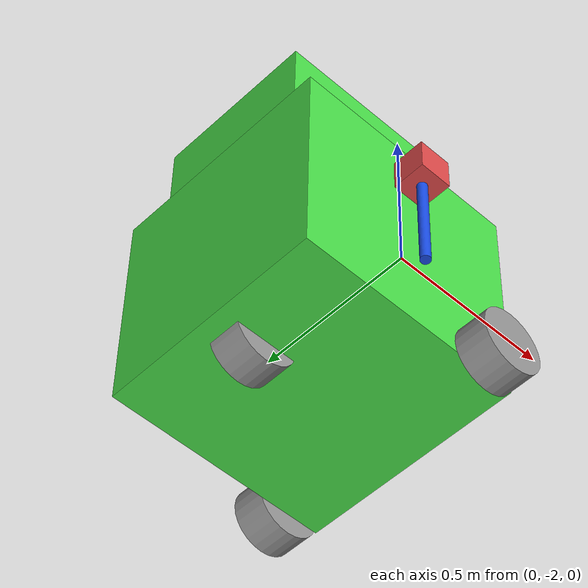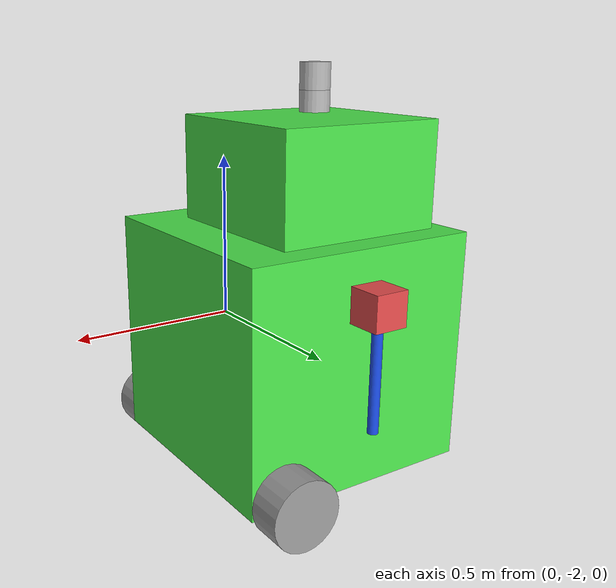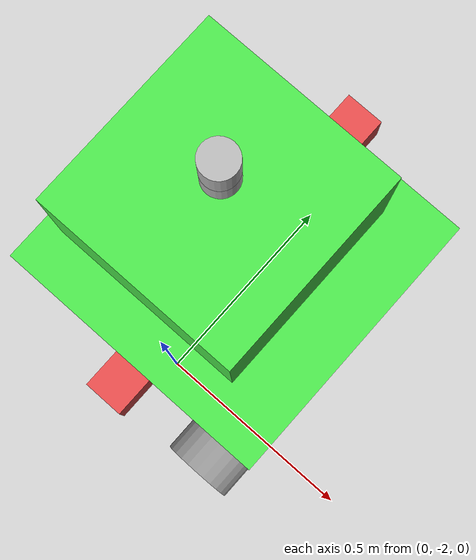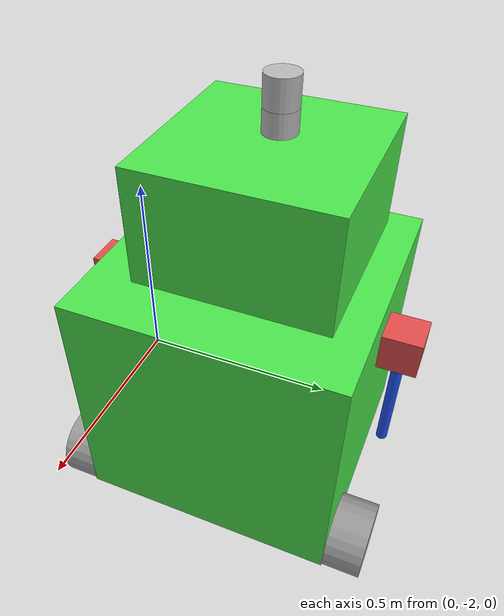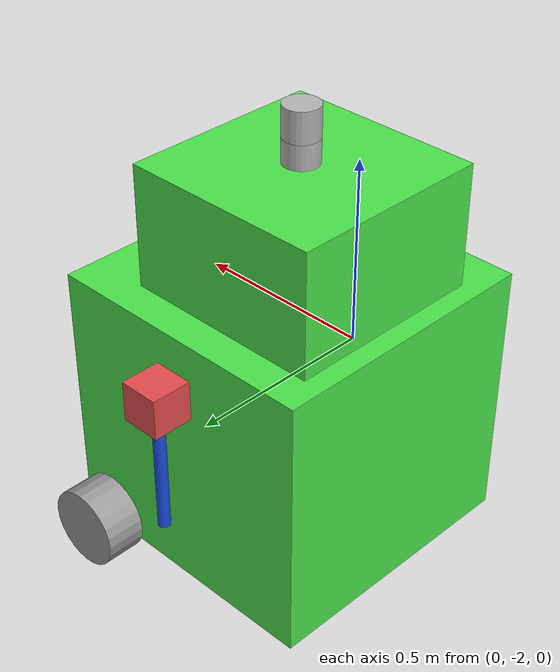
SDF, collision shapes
<?xml version='1.0'?>
<sdf version='1.6'>
  <model name='HumanoidRobot'>
    <model name='Humanoid1'>
      <link name='link'>
        <pose frame=''>-0.097745 -1.70879 0.485 0 -0 0</pose>
        <inertial>
          <mass>1</mass>
          <inertia>
            <ixx>0.166667</ixx>
            <ixy>0</ixy>
            <ixz>0</ixz>
            <iyy>0.166667</iyy>
            <iyz>0</iyz>
            <izz>0.166667</izz>
          </inertia>
          <pose frame=''>0 0 0 0 -0 0</pose>
        </inertial>
        <self_collide>0</self_collide>
        <kinematic>0</kinematic>
        <visual name='visual'>
          <geometry>
            <box>
              <size>0.5 0.5 0.3</size>
            </box>
          </geometry>
          <material>
            <script>
              <name>Gazebo/Grey</name>
              <uri>file://media/materials/scripts/gazebo.material</uri>
            </script>
            <shader type='pixel'>
              <normal_map>__default__</normal_map>
            </shader>
            <ambient>0.3 0.9 0.3 1</ambient>
            <diffuse>0.7 0.7 0.7 1</diffuse>
            <specular>0.01 0.01 0.01 1</specular>
            <emissive>0 0 0 1</emissive>
          </material>
          <pose frame=''>0 0 0 0 -0 0</pose>
          <transparency>0</transparency>
          <cast_shadows>1</cast_shadows>
        </visual>
        <collision name='collision'>
          <laser_retro>0</laser_retro>
          <max_contacts>10</max_contacts>
          <pose frame=''>0 0 0 0 -0 0</pose>
          <geometry>
            <box>
              <size>0.5 0.5 0.3</size>
            </box>
          </geometry>
          <surface>
            <friction>
              <ode>
                <mu>1</mu>
                <mu2>1</mu2>
                <fdir1>0 0 0</fdir1>
                <slip1>0</slip1>
                <slip2>0</slip2>
              </ode>
              <torsional>
                <coefficient>1</coefficient>
                <patch_radius>0</patch_radius>
                <surface_radius>0</surface_radius>
                <use_patch_radius>1</use_patch_radius>
                <ode>
                  <slip>0</slip>
                </ode>
              </torsional>
            </friction>
            <bounce>
              <restitution_coefficient>0</restitution_coefficient>
              <threshold>1e+06</threshold>
            </bounce>
            <contact>
              <collide_without_contact>0</collide_without_contact>
              <collide_without_contact_bitmask>1</collide_without_contact_bitmask>
              <collide_bitmask>1</collide_bitmask>
              <ode>
                <soft_cfm>0</soft_cfm>
                <soft_erp>0.2</soft_erp>
                <kp>1e+13</kp>
                <kd>1</kd>
                <max_vel>0.01</max_vel>
                <min_depth>0</min_depth>
              </ode>
              <bullet>
                <split_impulse>1</split_impulse>
                <split_impulse_penetration_threshold>-0.01</split_impulse_penetration_threshold>
                <soft_cfm>0</soft_cfm>
                <soft_erp>0.2</soft_erp>
                <kp>1e+13</kp>
                <kd>1</kd>
              </bullet>
            </contact>
          </surface>
        </collision>
      </link>
      <link name='link_0'>
        <pose frame=''>-0.047736 -1.72366 0 0 -0 0</pose>
        <inertial>
          <mass>1</mass>
          <inertia>
            <ixx>0.166667</ixx>
            <ixy>0</ixy>
            <ixz>0</ixz>
            <iyy>0.166667</iyy>
            <iyz>0</iyz>
            <izz>0.166667</izz>
          </inertia>
          <pose frame=''>0 0 0 0 -0 0</pose>
        </inertial>
        <self_collide>0</self_collide>
        <kinematic>0</kinematic>
        <visual name='visual'>
          <pose frame=''>0 0 0 0 -0 0</pose>
          <geometry>
            <box>
              <size>0.7 0.7 0.67</size>
            </box>
          </geometry>
          <material>
            <lighting>1</lighting>
            <script>
              <uri>file://media/materials/scripts/gazebo.material</uri>
              <name>Gazebo/Grey</name>
            </script>
            <shader type='pixel'>
              <normal_map>__default__</normal_map>
            </shader>
            <ambient>0.3 0.9 0.3 1</ambient>
            <diffuse>0.7 0.7 0.7 1</diffuse>
            <specular>0.01 0.01 0.01 1</specular>
            <emissive>0 0 0 1</emissive>
          </material>
          <transparency>0</transparency>
          <cast_shadows>1</cast_shadows>
        </visual>
        <collision name='collision'>
          <laser_retro>0</laser_retro>
          <max_contacts>10</max_contacts>
          <pose frame=''>0 0 0 0 -0 0</pose>
          <geometry>
            <box>
              <size>0.7 0.7 0.67</size>
            </box>
          </geometry>
          <surface>
            <friction>
              <ode>
                <mu>1</mu>
                <mu2>1</mu2>
                <fdir1>0 0 0</fdir1>
                <slip1>0</slip1>
                <slip2>0</slip2>
              </ode>
              <torsional>
                <coefficient>1</coefficient>
                <patch_radius>0</patch_radius>
                <surface_radius>0</surface_radius>
                <use_patch_radius>1</use_patch_radius>
                <ode>
                  <slip>0</slip>
                </ode>
              </torsional>
            </friction>
            <bounce>
              <restitution_coefficient>0</restitution_coefficient>
              <threshold>1e+06</threshold>
            </bounce>
            <contact>
              <collide_without_contact>0</collide_without_contact>
              <collide_without_contact_bitmask>1</collide_without_contact_bitmask>
              <collide_bitmask>1</collide_bitmask>
              <ode>
                <soft_cfm>0</soft_cfm>
                <soft_erp>0.2</soft_erp>
                <kp>1e+13</kp>
                <kd>1</kd>
                <max_vel>0.01</max_vel>
                <min_depth>0</min_depth>
              </ode>
              <bullet>
                <split_impulse>1</split_impulse>
                <split_impulse_penetration_threshold>-0.01</split_impulse_penetration_threshold>
                <soft_cfm>0</soft_cfm>
                <soft_erp>0.2</soft_erp>
                <kp>1e+13</kp>
                <kd>1</kd>
              </bullet>
            </contact>
          </surface>
        </collision>
      </link>
      <link name='link_1_clone_clone'>
        <pose frame=''>0.202264 -1.32366 -0.3 1.5708 -0 0</pose>
        <inertial>
          <mass>1</mass>
          <inertia>
            <ixx>0.145833</ixx>
            <ixy>0</ixy>
            <ixz>0</ixz>
            <iyy>0.145833</iyy>
            <iyz>0</iyz>
            <izz>0.125</izz>
          </inertia>
          <pose frame=''>0 0 0 0 -0 0</pose>
        </inertial>
        <self_collide>0</self_collide>
        <kinematic>0</kinematic>
        <visual name='visual'>
          <pose frame=''>0 0 0 0 -0 0</pose>
          <geometry>
            <cylinder>
              <radius>0.1</radius>
              <length>0.1</length>
            </cylinder>
          </geometry>
          <material>
            <lighting>1</lighting>
            <script>
              <uri>file://media/materials/scripts/gazebo.material</uri>
              <name>Gazebo/Grey</name>
            </script>
            <shader type='pixel'>
              <normal_map>__default__</normal_map>
            </shader>
            <ambient>0.9 0.9 0.9 1</ambient>
            <diffuse>0.7 0.7 0.7 1</diffuse>
            <specular>0.01 0.01 0.01 1</specular>
            <emissive>0 0 0 1</emissive>
          </material>
          <transparency>0</transparency>
          <cast_shadows>1</cast_shadows>
        </visual>
        <collision name='collision'>
          <laser_retro>0</laser_retro>
          <max_contacts>10</max_contacts>
          <pose frame=''>0 0 0 0 -0 0</pose>
          <geometry>
            <cylinder>
              <radius>0.1</radius>
              <length>0.1</length>
            </cylinder>
          </geometry>
          <surface>
            <friction>
              <ode>
                <mu>1</mu>
                <mu2>1</mu2>
                <fdir1>0 0 0</fdir1>
                <slip1>0</slip1>
                <slip2>0</slip2>
              </ode>
              <torsional>
                <coefficient>1</coefficient>
                <patch_radius>0</patch_radius>
                <surface_radius>0</surface_radius>
                <use_patch_radius>1</use_patch_radius>
                <ode>
                  <slip>0</slip>
                </ode>
              </torsional>
            </friction>
            <bounce>
              <restitution_coefficient>0</restitution_coefficient>
              <threshold>1e+06</threshold>
            </bounce>
            <contact>
              <collide_without_contact>0</collide_without_contact>
              <collide_without_contact_bitmask>1</collide_without_contact_bitmask>
              <collide_bitmask>1</collide_bitmask>
              <ode>
                <soft_cfm>0</soft_cfm>
                <soft_erp>0.2</soft_erp>
                <kp>1e+13</kp>
                <kd>1</kd>
                <max_vel>0.01</max_vel>
                <min_depth>0</min_depth>
              </ode>
              <bullet>
                <split_impulse>1</split_impulse>
                <split_impulse_penetration_threshold>-0.01</split_impulse_penetration_threshold>
                <soft_cfm>0</soft_cfm>
                <soft_erp>0.2</soft_erp>
                <kp>1e+13</kp>
                <kd>1</kd>
              </bullet>
            </contact>
          </surface>
        </collision>
      </link>
      <link name='link_1_clone_clone_0'>
        <pose frame=''>0.202264 -2.12366 -0.3 1.5708 -0 0</pose>
        <inertial>
          <mass>1</mass>
          <inertia>
            <ixx>0.145833</ixx>
            <ixy>0</ixy>
            <ixz>0</ixz>
            <iyy>0.145833</iyy>
            <iyz>0</iyz>
            <izz>0.125</izz>
          </inertia>
          <pose frame=''>0 0 0 0 -0 0</pose>
        </inertial>
        <self_collide>0</self_collide>
        <kinematic>0</kinematic>
        <visual name='visual'>
          <pose frame=''>0 0 0 0 -0 0</pose>
          <geometry>
            <cylinder>
              <radius>0.1</radius>
              <length>0.1</length>
            </cylinder>
          </geometry>
          <material>
            <lighting>1</lighting>
            <script>
              <uri>file://media/materials/scripts/gazebo.material</uri>
              <name>Gazebo/Grey</name>
            </script>
            <shader type='pixel'>
              <normal_map>__default__</normal_map>
            </shader>
            <ambient>0.9 0.9 0.9 1</ambient>
            <diffuse>0.7 0.7 0.7 1</diffuse>
            <specular>0.01 0.01 0.01 1</specular>
            <emissive>0 0 0 1</emissive>
          </material>
          <transparency>0</transparency>
          <cast_shadows>1</cast_shadows>
        </visual>
        <collision name='collision'>
          <laser_retro>0</laser_retro>
          <max_contacts>10</max_contacts>
          <pose frame=''>0 0 0 0 -0 0</pose>
          <geometry>
            <cylinder>
              <radius>0.1</radius>
              <length>0.1</length>
            </cylinder>
          </geometry>
          <surface>
            <friction>
              <ode>
                <mu>1</mu>
                <mu2>1</mu2>
                <fdir1>0 0 0</fdir1>
                <slip1>0</slip1>
                <slip2>0</slip2>
              </ode>
              <torsional>
                <coefficient>1</coefficient>
                <patch_radius>0</patch_radius>
                <surface_radius>0</surface_radius>
                <use_patch_radius>1</use_patch_radius>
                <ode>
                  <slip>0</slip>
                </ode>
              </torsional>
            </friction>
            <bounce>
              <restitution_coefficient>0</restitution_coefficient>
              <threshold>1e+06</threshold>
            </bounce>
            <contact>
              <collide_without_contact>0</collide_without_contact>
              <collide_without_contact_bitmask>1</collide_without_contact_bitmask>
              <collide_bitmask>1</collide_bitmask>
              <ode>
                <soft_cfm>0</soft_cfm>
                <soft_erp>0.2</soft_erp>
                <kp>1e+13</kp>
                <kd>1</kd>
                <max_vel>0.01</max_vel>
                <min_depth>0</min_depth>
              </ode>
              <bullet>
                <split_impulse>1</split_impulse>
                <split_impulse_penetration_threshold>-0.01</split_impulse_penetration_threshold>
                <soft_cfm>0</soft_cfm>
                <soft_erp>0.2</soft_erp>
                <kp>1e+13</kp>
                <kd>1</kd>
              </bullet>
            </contact>
          </surface>
        </collision>
      </link>
      <link name='link_1_clone_clone_0_clone'>
        <pose frame=''>-0.247736 -1.72366 -0.3 1.5708 -0 0</pose>
        <inertial>
          <mass>1</mass>
          <inertia>
            <ixx>0.145833</ixx>
            <ixy>0</ixy>
            <ixz>0</ixz>
            <iyy>0.145833</iyy>
            <iyz>0</iyz>
            <izz>0.125</izz>
          </inertia>
          <pose frame=''>0 0 0 0 -0 0</pose>
        </inertial>
        <self_collide>0</self_collide>
        <kinematic>0</kinematic>
        <visual name='visual'>
          <pose frame=''>0 0 0 0 -0 0</pose>
          <geometry>
            <cylinder>
              <radius>0.1</radius>
              <length>0.1</length>
            </cylinder>
          </geometry>
          <material>
            <lighting>1</lighting>
            <script>
              <uri>file://media/materials/scripts/gazebo.material</uri>
              <name>Gazebo/Grey</name>
            </script>
            <shader type='pixel'>
              <normal_map>__default__</normal_map>
            </shader>
            <ambient>0.3 0.3 0.3 1</ambient>
            <diffuse>0.7 0.7 0.7 1</diffuse>
            <specular>0.01 0.01 0.01 1</specular>
            <emissive>0 0 0 1</emissive>
          </material>
          <transparency>0</transparency>
          <cast_shadows>1</cast_shadows>
        </visual>
        <collision name='collision'>
          <laser_retro>0</laser_retro>
          <max_contacts>10</max_contacts>
          <pose frame=''>0 0 0 0 -0 0</pose>
          <geometry>
            <cylinder>
              <radius>0.1</radius>
              <length>0.1</length>
            </cylinder>
          </geometry>
          <surface>
            <friction>
              <ode>
                <mu>1</mu>
                <mu2>1</mu2>
                <fdir1>0 0 0</fdir1>
                <slip1>0</slip1>
                <slip2>0</slip2>
              </ode>
              <torsional>
                <coefficient>1</coefficient>
                <patch_radius>0</patch_radius>
                <surface_radius>0</surface_radius>
                <use_patch_radius>1</use_patch_radius>
                <ode>
                  <slip>0</slip>
                </ode>
              </torsional>
            </friction>
            <bounce>
              <restitution_coefficient>0</restitution_coefficient>
              <threshold>1e+06</threshold>
            </bounce>
            <contact>
              <collide_without_contact>0</collide_without_contact>
              <collide_without_contact_bitmask>1</collide_without_contact_bitmask>
              <collide_bitmask>1</collide_bitmask>
              <ode>
                <soft_cfm>0</soft_cfm>
                <soft_erp>0.2</soft_erp>
                <kp>1e+13</kp>
                <kd>1</kd>
                <max_vel>0.01</max_vel>
                <min_depth>0</min_depth>
              </ode>
              <bullet>
                <split_impulse>1</split_impulse>
                <split_impulse_penetration_threshold>-0.01</split_impulse_penetration_threshold>
                <soft_cfm>0</soft_cfm>
                <soft_erp>0.2</soft_erp>
                <kp>1e+13</kp>
                <kd>1</kd>
              </bullet>
            </contact>
          </surface>
        </collision>
      </link>
      <link name='link_2_clone'>
        <pose frame=''>-0.045 -2.12366 0.195 0 -0 0</pose>
        <inertial>
          <mass>1</mass>
          <inertia>
            <ixx>0.166667</ixx>
            <ixy>0</ixy>
            <ixz>0</ixz>
            <iyy>0.166667</iyy>
            <iyz>0</iyz>
            <izz>0.166667</izz>
          </inertia>
          <pose frame=''>0 0 0 0 -0 0</pose>
        </inertial>
        <self_collide>0</self_collide>
        <kinematic>0</kinematic>
        <visual name='visual'>
          <pose frame=''>0 0 0 0 -0 0</pose>
          <geometry>
            <box>
              <size>0.1 0.1 0.1</size>
            </box>
          </geometry>
          <material>
            <lighting>1</lighting>
            <script>
              <uri>file://media/materials/scripts/gazebo.material</uri>
              <name>Gazebo/Grey</name>
            </script>
            <shader type='pixel'>
              <normal_map>__default__</normal_map>
            </shader>
            <ambient>0.9 0.3 0.3 1</ambient>
            <diffuse>0.7 0.7 0.7 1</diffuse>
            <specular>0.01 0.01 0.01 1</specular>
            <emissive>0 0 0 1</emissive>
          </material>
          <transparency>0</transparency>
          <cast_shadows>1</cast_shadows>
        </visual>
        <collision name='collision'>
          <laser_retro>0</laser_retro>
          <max_contacts>10</max_contacts>
          <pose frame=''>0 0 0 0 -0 0</pose>
          <geometry>
            <box>
              <size>0.1 0.1 0.1</size>
            </box>
          </geometry>
          <surface>
            <friction>
              <ode>
                <mu>1</mu>
                <mu2>1</mu2>
                <fdir1>0 0 0</fdir1>
                <slip1>0</slip1>
                <slip2>0</slip2>
              </ode>
              <torsional>
                <coefficient>1</coefficient>
                <patch_radius>0</patch_radius>
                <surface_radius>0</surface_radius>
                <use_patch_radius>1</use_patch_radius>
                <ode>
                  <slip>0</slip>
                </ode>
              </torsional>
            </friction>
            <bounce>
              <restitution_coefficient>0</restitution_coefficient>
              <threshold>1e+06</threshold>
            </bounce>
            <contact>
              <collide_without_contact>0</collide_without_contact>
              <collide_without_contact_bitmask>1</collide_without_contact_bitmask>
              <collide_bitmask>1</collide_bitmask>
              <ode>
                <soft_cfm>0</soft_cfm>
                <soft_erp>0.2</soft_erp>
                <kp>1e+13</kp>
                <kd>1</kd>
                <max_vel>0.01</max_vel>
                <min_depth>0</min_depth>
              </ode>
              <bullet>
                <split_impulse>1</split_impulse>
                <split_impulse_penetration_threshold>-0.01</split_impulse_penetration_threshold>
                <soft_cfm>0</soft_cfm>
                <soft_erp>0.2</soft_erp>
                <kp>1e+13</kp>
                <kd>1</kd>
              </bullet>
            </contact>
          </surface>
        </collision>
      </link>
      <link name='link_3'>
        <pose frame=''>-0.045 -2.12366 -0.005 0 -0 0</pose>
        <inertial>
          <mass>1</mass>
          <inertia>
            <ixx>0.145833</ixx>
            <ixy>0</ixy>
            <ixz>0</ixz>
            <iyy>0.145833</iyy>
            <iyz>0</iyz>
            <izz>0.125</izz>
          </inertia>
          <pose frame=''>0 0 0 0 -0 0</pose>
        </inertial>
        <self_collide>0</self_collide>
        <kinematic>0</kinematic>
        <gravity>1</gravity>
        <visual name='visual'>
          <pose frame=''>0 0 0 0 -0 0</pose>
          <geometry>
            <cylinder>
              <radius>0.015</radius>
              <length>0.3</length>
            </cylinder>
          </geometry>
          <material>
            <lighting>1</lighting>
            <script>
              <uri>file://media/materials/scripts/gazebo.material</uri>
              <name>Gazebo/Grey</name>
            </script>
            <shader type='pixel'>
              <normal_map>__default__</normal_map>
            </shader>
            <ambient>0.1 0.3 0.9 1</ambient>
            <diffuse>0.7 0.7 0.7 1</diffuse>
            <specular>0.01 0.01 0.01 1</specular>
            <emissive>0 0 0 1</emissive>
          </material>
          <transparency>0</transparency>
          <cast_shadows>1</cast_shadows>
        </visual>
        <collision name='collision'>
          <laser_retro>0</laser_retro>
          <max_contacts>10</max_contacts>
          <pose frame=''>0 0 0 0 -0 0</pose>
          <geometry>
            <cylinder>
              <radius>0.015</radius>
              <length>0.3</length>
            </cylinder>
          </geometry>
          <surface>
            <friction>
              <ode>
                <mu>1</mu>
                <mu2>1</mu2>
                <fdir1>0 0 0</fdir1>
                <slip1>0</slip1>
                <slip2>0</slip2>
              </ode>
              <torsional>
                <coefficient>1</coefficient>
                <patch_radius>0</patch_radius>
                <surface_radius>0</surface_radius>
                <use_patch_radius>1</use_patch_radius>
                <ode>
                  <slip>0</slip>
                </ode>
              </torsional>
            </friction>
            <bounce>
              <restitution_coefficient>0</restitution_coefficient>
              <threshold>1e+06</threshold>
            </bounce>
            <contact>
              <collide_without_contact>0</collide_without_contact>
              <collide_without_contact_bitmask>1</collide_without_contact_bitmask>
              <collide_bitmask>1</collide_bitmask>
              <ode>
                <soft_cfm>0</soft_cfm>
                <soft_erp>0.2</soft_erp>
                <kp>1e+13</kp>
                <kd>1</kd>
                <max_vel>0.01</max_vel>
                <min_depth>0</min_depth>
              </ode>
              <bullet>
                <split_impulse>1</split_impulse>
                <split_impulse_penetration_threshold>-0.01</split_impulse_penetration_threshold>
                <soft_cfm>0</soft_cfm>
                <soft_erp>0.2</soft_erp>
                <kp>1e+13</kp>
                <kd>1</kd>
              </bullet>
            </contact>
          </surface>
        </collision>
      </link>
      <link name='link_3_clone'>
        <pose frame=''>-0.045 -1.32366 -0.005 0 -0 0</pose>
        <inertial>
          <mass>1</mass>
          <inertia>
            <ixx>0.145833</ixx>
            <ixy>0</ixy>
            <ixz>0</ixz>
            <iyy>0.145833</iyy>
            <iyz>0</iyz>
            <izz>0.125</izz>
          </inertia>
          <pose frame=''>0 0 0 0 -0 0</pose>
        </inertial>
        <self_collide>0</self_collide>
        <kinematic>0</kinematic>
        <gravity>1</gravity>
        <visual name='visual'>
          <pose frame=''>0 0 0 0 -0 0</pose>
          <geometry>
            <cylinder>
              <radius>0.015</radius>
              <length>0.3</length>
            </cylinder>
          </geometry>
          <material>
            <lighting>1</lighting>
            <script>
              <uri>file://media/materials/scripts/gazebo.material</uri>
              <name>Gazebo/Grey</name>
            </script>
            <shader type='pixel'>
              <normal_map>__default__</normal_map>
            </shader>
            <ambient>0.1 0.3 0.9 1</ambient>
            <diffuse>0.7 0.7 0.7 1</diffuse>
            <specular>0.01 0.01 0.01 1</specular>
            <emissive>0 0 0 1</emissive>
          </material>
          <transparency>0</transparency>
          <cast_shadows>1</cast_shadows>
        </visual>
        <collision name='collision'>
          <laser_retro>0</laser_retro>
          <max_contacts>10</max_contacts>
          <pose frame=''>0 0 0 0 -0 0</pose>
          <geometry>
            <cylinder>
              <radius>0.015</radius>
              <length>0.3</length>
            </cylinder>
          </geometry>
          <surface>
            <friction>
              <ode>
                <mu>1</mu>
                <mu2>1</mu2>
                <fdir1>0 0 0</fdir1>
                <slip1>0</slip1>
                <slip2>0</slip2>
              </ode>
              <torsional>
                <coefficient>1</coefficient>
                <patch_radius>0</patch_radius>
                <surface_radius>0</surface_radius>
                <use_patch_radius>1</use_patch_radius>
                <ode>
                  <slip>0</slip>
                </ode>
              </torsional>
            </friction>
            <bounce>
              <restitution_coefficient>0</restitution_coefficient>
              <threshold>1e+06</threshold>
            </bounce>
            <contact>
              <collide_without_contact>0</collide_without_contact>
              <collide_without_contact_bitmask>1</collide_without_contact_bitmask>
              <collide_bitmask>1</collide_bitmask>
              <ode>
                <soft_cfm>0</soft_cfm>
                <soft_erp>0.2</soft_erp>
                <kp>1e+13</kp>
                <kd>1</kd>
                <max_vel>0.01</max_vel>
                <min_depth>0</min_depth>
              </ode>
              <bullet>
                <split_impulse>1</split_impulse>
                <split_impulse_penetration_threshold>-0.01</split_impulse_penetration_threshold>
                <soft_cfm>0</soft_cfm>
                <soft_erp>0.2</soft_erp>
                <kp>1e+13</kp>
                <kd>1</kd>
              </bullet>
            </contact>
          </surface>
        </collision>
      </link>
      <link name='link_4'>
        <pose frame=''>-0.045 -1.32366 0.195 0 -0 0</pose>
        <inertial>
          <mass>1</mass>
          <inertia>
            <ixx>0.166667</ixx>
            <ixy>0</ixy>
            <ixz>0</ixz>
            <iyy>0.166667</iyy>
            <iyz>0</iyz>
            <izz>0.166667</izz>
          </inertia>
          <pose frame=''>0 0 0 0 -0 0</pose>
        </inertial>
        <self_collide>0</self_collide>
        <kinematic>0</kinematic>
        <visual name='visual'>
          <pose frame=''>0 0 0 0 -0 0</pose>
          <geometry>
            <box>
              <size>0.1 0.1 0.1</size>
            </box>
          </geometry>
          <material>
            <lighting>1</lighting>
            <script>
              <uri>file://media/materials/scripts/gazebo.material</uri>
              <name>Gazebo/Grey</name>
            </script>
            <shader type='pixel'>
              <normal_map>__default__</normal_map>
            </shader>
            <ambient>0.9 0.3 0.3 1</ambient>
            <diffuse>0.7 0.7 0.7 1</diffuse>
            <specular>0.01 0.01 0.01 1</specular>
            <emissive>0 0 0 1</emissive>
          </material>
          <transparency>0</transparency>
          <cast_shadows>1</cast_shadows>
        </visual>
        <collision name='collision'>
          <laser_retro>0</laser_retro>
          <max_contacts>10</max_contacts>
          <pose frame=''>0 0 0 0 -0 0</pose>
          <geometry>
            <box>
              <size>0.1 0.1 0.1</size>
            </box>
          </geometry>
          <surface>
            <friction>
              <ode>
                <mu>1</mu>
                <mu2>1</mu2>
                <fdir1>0 0 0</fdir1>
                <slip1>0</slip1>
                <slip2>0</slip2>
              </ode>
              <torsional>
                <coefficient>1</coefficient>
                <patch_radius>0</patch_radius>
                <surface_radius>0</surface_radius>
                <use_patch_radius>1</use_patch_radius>
                <ode>
                  <slip>0</slip>
                </ode>
              </torsional>
            </friction>
            <bounce>
              <restitution_coefficient>0</restitution_coefficient>
              <threshold>1e+06</threshold>
            </bounce>
            <contact>
              <collide_without_contact>0</collide_without_contact>
              <collide_without_contact_bitmask>1</collide_without_contact_bitmask>
              <collide_bitmask>1</collide_bitmask>
              <ode>
                <soft_cfm>0</soft_cfm>
                <soft_erp>0.2</soft_erp>
                <kp>1e+13</kp>
                <kd>1</kd>
                <max_vel>0.01</max_vel>
                <min_depth>0</min_depth>
              </ode>
              <bullet>
                <split_impulse>1</split_impulse>
                <split_impulse_penetration_threshold>-0.01</split_impulse_penetration_threshold>
                <soft_cfm>0</soft_cfm>
                <soft_erp>0.2</soft_erp>
                <kp>1e+13</kp>
                <kd>1</kd>
              </bullet>
            </contact>
          </surface>
        </collision>
      </link>
      <model name='velodyne'>
        <link name='base'>
          <pose frame=''>0 0 0.029335 0 -0 0</pose>
          <inertial>
            <mass>1.2</mass>
            <inertia>
              <ixx>0.00108747</ixx>
              <iyy>0.00108747</iyy>
              <izz>0.00109244</izz>
              <ixy>0</ixy>
              <ixz>0</ixz>
              <iyz>0</iyz>
            </inertia>
          </inertial>
          <collision name='base_collision'>
            <geometry>
              <cylinder>
                <radius>0.04267</radius>
                <length>0.05867</length>
              </cylinder>
            </geometry>
          </collision>
          <visual name='base_visual'>
            <pose frame=''>0 0 -0.029335 0 -0 0</pose>
            <geometry>
              <mesh>
                <uri>model://velodyne_hdl32/meshes/velodyne_base.dae</uri>
              </mesh>
            </geometry>
          </visual>
        </link>
        <link name='top'>
          <pose frame=''>0 0 0.095455 0 -0 0</pose>
          <inertial>
            <mass>0.1</mass>
            <inertia>
              <ixx>9.0623e-05</ixx>
              <iyy>9.0623e-05</iyy>
              <izz>9.1036e-05</izz>
              <ixy>0</ixy>
              <ixz>0</ixz>
              <iyz>0</iyz>
            </inertia>
          </inertial>
          <collision name='top_collision'>
            <geometry>
              <cylinder>
                <radius>0.04267</radius>
                <length>0.07357</length>
              </cylinder>
            </geometry>
          </collision>
          <visual name='top_visual'>
            <pose frame=''>0 0 -0.037679 0 -0 1.5707</pose>
            <geometry>
              <mesh>
                <uri>model://velodyne_hdl32/meshes/velodyne_top.dae</uri>
              </mesh>
            </geometry>
          </visual>
          <sensor name='sensor' type='ray'>
            <pose frame=''>0 0 -0.004645 1.5707 -0 0</pose>
            <visualize>1</visualize>
            <update_rate>30</update_rate>
            <ray>
              <noise>
                <type>gaussian</type>
                <mean>0</mean>
                <stddev>0.1</stddev>
              </noise>
              <scan>
                <horizontal>
                  <samples>32</samples>
                  <resolution>1</resolution>
                  <min_angle>-0.535292</min_angle>
                  <max_angle>0.186227</max_angle>
                </horizontal>
              </scan>
              <range>
                <min>0.1</min>
                <max>70</max>
                <resolution>0.02</resolution>
              </range>
            </ray>
          </sensor>
        </link>
        <joint name='joint' type='revolute'>
          <pose frame=''>0 0 -0.036785 0 -0 0</pose>
          <parent>base</parent>
          <child>top</child>
          <axis>
            <xyz>0 0 1</xyz>
            <limit>
              <lower>-1e+16</lower>
              <upper>1e+16</upper>
            </limit>
            <use_parent_model_frame>0</use_parent_model_frame>
          </axis>
        </joint>
        <pose frame=''>-0.107351 -1.69248 0.648205 0 -0 0</pose>
      </model>
      <joint name='link_0_JOINT_0' type='fixed'>
        <parent>link_0</parent>
        <child>link</child>
        <pose frame=''>0 0 0 0 -0 0</pose>
        <physics>
          <ode>
            <limit>
              <cfm>0</cfm>
              <erp>0.2</erp>
            </limit>
            <suspension>
              <cfm>0</cfm>
              <erp>0.2</erp>
            </suspension>
          </ode>
        </physics>
      </joint>
      <joint name='link_0_JOINT_1' type='revolute'>
        <parent>link_0</parent>
        <child>link_1_clone_clone</child>
        <pose frame=''>0 0 0 0 -0 0</pose>
        <axis>
          <xyz>1 0 0</xyz>
          <use_parent_model_frame>0</use_parent_model_frame>
          <limit>
            <lower>-1.79769e+308</lower>
            <upper>1.79769e+308</upper>
            <effort>-1</effort>
            <velocity>-1</velocity>
          </limit>
          <dynamics>
            <spring_reference>0</spring_reference>
            <spring_stiffness>0</spring_stiffness>
            <damping>0</damping>
            <friction>0</friction>
          </dynamics>
        </axis>
        <physics>
          <ode>
            <limit>
              <cfm>0</cfm>
              <erp>0.2</erp>
            </limit>
            <suspension>
              <cfm>0</cfm>
              <erp>0.2</erp>
            </suspension>
          </ode>
        </physics>
      </joint>
      <joint name='link_0_JOINT_2' type='revolute'>
        <parent>link_0</parent>
        <child>link_1_clone_clone_0</child>
        <pose frame=''>0 0 0 0 -0 0</pose>
        <axis>
          <xyz>1 0 0</xyz>
          <use_parent_model_frame>0</use_parent_model_frame>
          <limit>
            <lower>-1.79769e+308</lower>
            <upper>1.79769e+308</upper>
            <effort>-1</effort>
            <velocity>-1</velocity>
          </limit>
          <dynamics>
            <spring_reference>0</spring_reference>
            <spring_stiffness>0</spring_stiffness>
            <damping>0</damping>
            <friction>0</friction>
          </dynamics>
        </axis>
        <physics>
          <ode>
            <limit>
              <cfm>0</cfm>
              <erp>0.2</erp>
            </limit>
            <suspension>
              <cfm>0</cfm>
              <erp>0.2</erp>
            </suspension>
          </ode>
        </physics>
      </joint>
      <joint name='link_0_JOINT_3' type='revolute'>
        <parent>link_0</parent>
        <child>link_1_clone_clone_0_clone</child>
        <pose frame=''>0 0 0 0 -0 0</pose>
        <axis>
          <xyz>0 0 1</xyz>
          <use_parent_model_frame>0</use_parent_model_frame>
          <limit>
            <lower>-1.79769e+308</lower>
            <upper>1.79769e+308</upper>
            <effort>-1</effort>
            <velocity>-1</velocity>
          </limit>
          <dynamics>
            <spring_reference>0</spring_reference>
            <spring_stiffness>0</spring_stiffness>
            <damping>0</damping>
            <friction>0</friction>
          </dynamics>
        </axis>
        <physics>
          <ode>
            <limit>
              <cfm>0</cfm>
              <erp>0.2</erp>
            </limit>
            <suspension>
              <cfm>0</cfm>
              <erp>0.2</erp>
            </suspension>
          </ode>
        </physics>
      </joint>
      <joint name='link_0_JOINT_4' type='revolute'>
        <parent>link_0</parent>
        <child>link_2_clone</child>
        <pose frame=''>0 0 0 0 -0 0</pose>
        <axis>
          <xyz>0 1 0</xyz>
          <use_parent_model_frame>0</use_parent_model_frame>
          <limit>
            <lower>-1.79769e+308</lower>
            <upper>1.79769e+308</upper>
            <effort>-1</effort>
            <velocity>-1</velocity>
          </limit>
          <dynamics>
            <spring_reference>0</spring_reference>
            <spring_stiffness>0</spring_stiffness>
            <damping>0</damping>
            <friction>0</friction>
          </dynamics>
        </axis>
        <physics>
          <ode>
            <limit>
              <cfm>0</cfm>
              <erp>0.2</erp>
            </limit>
            <suspension>
              <cfm>0</cfm>
              <erp>0.2</erp>
            </suspension>
          </ode>
        </physics>
      </joint>
      <joint name='link_0_JOINT_6' type='revolute'>
        <parent>link_0</parent>
        <child>link_4</child>
        <pose frame=''>0 0 0 0 -0 0</pose>
        <axis>
          <xyz>0 1 0</xyz>
          <use_parent_model_frame>0</use_parent_model_frame>
          <limit>
            <lower>-1.79769e+308</lower>
            <upper>1.79769e+308</upper>
            <effort>-1</effort>
            <velocity>-1</velocity>
          </limit>
          <dynamics>
            <spring_reference>0</spring_reference>
            <spring_stiffness>0</spring_stiffness>
            <damping>0</damping>
            <friction>0</friction>
          </dynamics>
        </axis>
        <physics>
          <ode>
            <limit>
              <cfm>0</cfm>
              <erp>0.2</erp>
            </limit>
            <suspension>
              <cfm>0</cfm>
              <erp>0.2</erp>
            </suspension>
          </ode>
        </physics>
      </joint>
      <joint name='link_2_clone_JOINT_7' type='fixed'>
        <parent>link_2_clone</parent>
        <child>link_3</child>
        <pose frame=''>0 0 0 0 -0 0</pose>
        <physics>
          <ode>
            <limit>
              <cfm>0</cfm>
              <erp>0.2</erp>
            </limit>
            <suspension>
              <cfm>0</cfm>
              <erp>0.2</erp>
            </suspension>
          </ode>
        </physics>
      </joint>
      <joint name='link_4_JOINT_8' type='fixed'>
        <parent>link_4</parent>
        <child>link_3_clone</child>
        <pose frame=''>0 0 0 0 -0 0</pose>
        <physics>
          <ode>
            <limit>
              <cfm>0</cfm>
              <erp>0.2</erp>
            </limit>
            <suspension>
              <cfm>0</cfm>
              <erp>0.2</erp>
            </suspension>
          </ode>
        </physics>
      </joint>
      <joint name='base_JOINT_3' type='revolute'>
        <parent>velodyne::base</parent>
        <child>link</child>
        <pose frame=''>0 0 0 0 -0 0</pose>
        <axis>
          <xyz>0 0 1</xyz>
          <use_parent_model_frame>0</use_parent_model_frame>
          <limit>
            <lower>-1.79769e+308</lower>
            <upper>1.79769e+308</upper>
            <effort>-1</effort>
            <velocity>-1</velocity>
          </limit>
          <dynamics>
            <spring_reference>0</spring_reference>
            <spring_stiffness>0</spring_stiffness>
            <damping>0</damping>
          </dynamics>
        </axis>
        <physics>
          <ode>
            <limit>
              <cfm>0</cfm>
              <erp>0.2</erp>
            </limit>
            <suspension>
              <cfm>0</cfm>
              <erp>0.2</erp>
            </suspension>
          </ode>
        </physics>
      </joint>
      <static>0</static>
      <allow_auto_disable>1</allow_auto_disable>
      <pose frame=''>2e-06 0 -0.000683 0 -0 0</pose>
    </model>
    <static>0</static>
    <allow_auto_disable>1</allow_auto_disable>
  </model>
</sdf>
